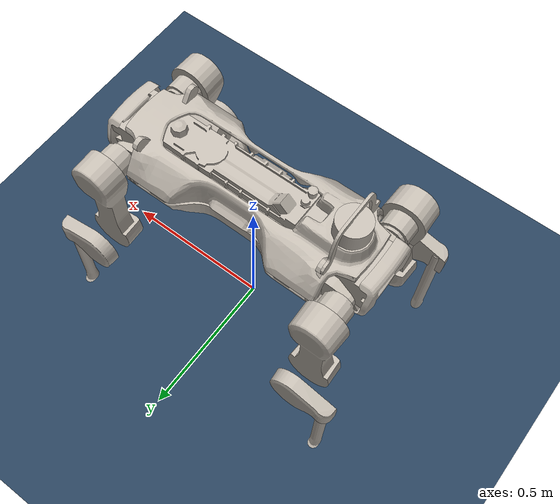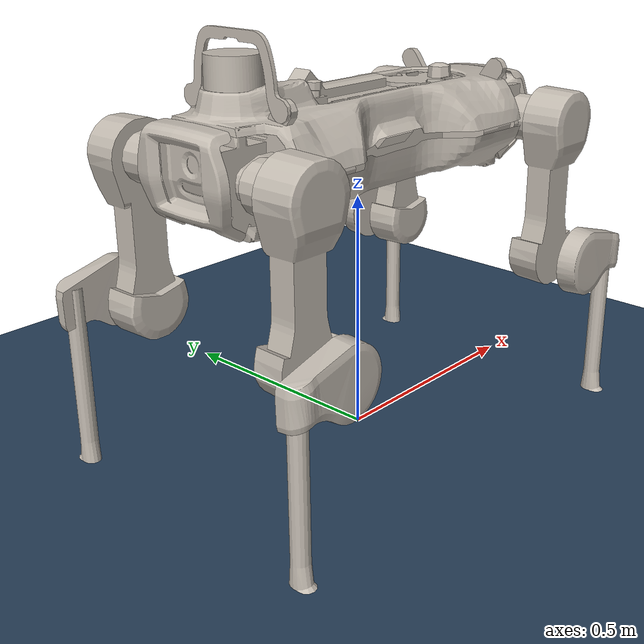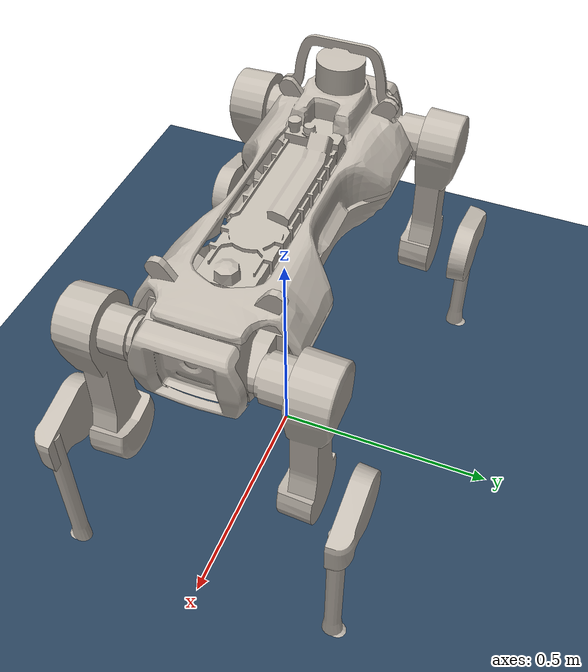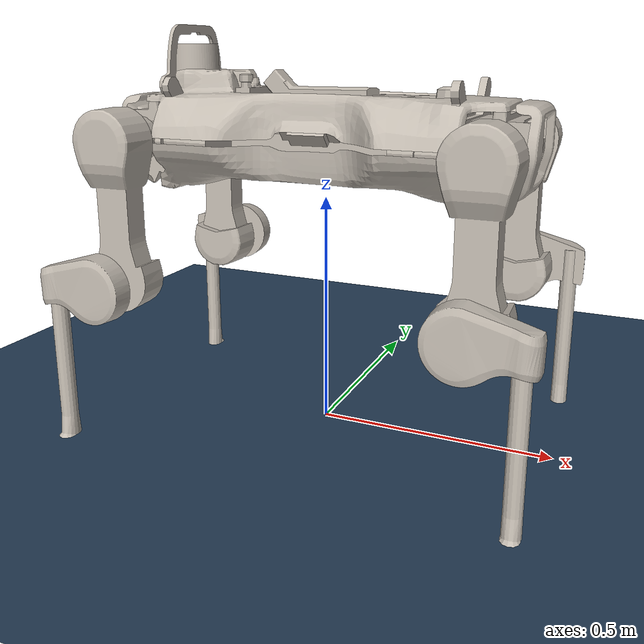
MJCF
<mujoco model="anymal_d scene">
  <include file="anymal_d.xml"/>

  <statistic center="0 0 0.3" extent="1.2"/>

  <visual>
    <headlight diffuse="0.6 0.6 0.6" ambient="0.3 0.3 0.3" specular="0 0 0"/>
    <rgba haze="0.15 0.25 0.35 1"/>
    <global azimuth="120" elevation="-20" offwidth="1280" offheight="960"/>
  </visual>

  <asset>
    <texture type="skybox" builtin="gradient" rgb1="0.3 0.5 0.7" rgb2="0 0 0" width="512" height="3072"/>
    <texture type="2d" name="groundplane" builtin="checker" mark="edge" rgb1="0.2 0.3 0.4"
        rgb2="0.1 0.2 0.3" markrgb="0.8 0.8 0.8" width="300" height="300"/>
    <material name="groundplane" texture="groundplane" texuniform="true" texrepeat="5 5" reflectance="0.2"/>
  </asset>

  <worldbody>
    <light pos="0 0 1.5" dir="0 0 -1" directional="true"/>
    <geom name="floor" size="0 0 0.05" type="plane" material="groundplane"/>
  </worldbody>
</mujoco>

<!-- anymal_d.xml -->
<mujoco model="anymal_d">
  <compiler angle="radian" meshdir="assets" texturedir="assets" autolimits="true"/>

  <option cone="elliptic" impratio="100"/>

  <default>
    <material specular="0" shininess="0.25"/>
    <default class="anymal_d">
      <joint damping="1" frictionloss="0.1" armature="0.1"/>

      <default class="visual">
        <geom type="mesh" contype="0" conaffinity="0" group="2"/>
      </default>
      <default class="collision">
        <geom group="3" type="cylinder"/>
        <default class="foot">
          <geom type="sphere" size="0.031" priority="1" solimp="0.015 1 0.031"
              condim="6" friction="0.8 0.02 0.01"/>
        </default>
      </default>

      <default class="affine">
        <position kp="100" ctrlrange="-6.28 6.28" forcerange="-80 80"/>
      </default>
    </default>
  </default>

  <asset>
    <material name="base"          texture="base"/>
    <material name="top_shell"     texture="top_shell"/>
    <material name="bottom_shell"  texture="bottom_shell"/>
    <material name="face_shell"    texture="face_shell"/>
    <material name="battery"       texture="battery"/>
    <material name="docking_socket" texture="docking_socket"/>
    <material name="lidar"         texture="lidar"/>
    <material name="lidar_guard"   texture="lidar_guard"/>
    <material name="drive"         texture="drive"/>
    <material name="hip"           texture="hip"/>
    <material name="thigh"         texture="thigh"/>
    <material name="shank"         texture="shank"/>
    <material name="foot"          texture="foot"/>

    <texture type="2d" name="base"          file="base.png"/>
    <texture type="2d" name="top_shell"     file="top_shell.png"/>
    <texture type="2d" name="bottom_shell"  file="bottom_shell.png"/>
    <texture type="2d" name="face_shell"    file="face_shell.png"/>
    <texture type="2d" name="battery"       file="battery.png"/>
    <texture type="2d" name="docking_socket" file="docking_socket.png"/>
    <texture type="2d" name="lidar"         file="lidar.png"/>
    <texture type="2d" name="lidar_guard"   file="lidar_guard.png"/>
    <texture type="2d" name="drive"         file="drive.png"/>
    <texture type="2d" name="hip"           file="hip.png"/>
    <texture type="2d" name="thigh"         file="thigh.png"/>
    <texture type="2d" name="shank"         file="shank.png"/>
    <texture type="2d" name="foot"          file="foot.png"/>

    <mesh file="base.obj"/>
    <mesh file="top_shell.obj"/>
    <mesh file="bottom_shell.obj"/>
    <mesh file="face_shell.obj"/>
    <mesh file="battery.obj"/>
    <mesh file="docking_socket.obj"/>
    <mesh file="lidar.obj"/>
    <mesh file="lidar_guard.obj"/>
    <mesh file="drive.obj"/>
    <mesh file="hip.obj"/>
    <mesh file="thigh.obj"/>
    <mesh file="shank_l.obj"/>
    <mesh file="shank_r.obj"/>
    <mesh file="foot.obj"/>
  </asset>

  <worldbody>
    <light name="spotlight" mode="targetbodycom" target="base" pos="0 -1 2" cutoff="30"/>
    <body name="base" pos="0 0 0.62" childclass="anymal_d">
      <freejoint/>
      <inertial mass="8.27629" pos="-0.02148 0.00173 -0.04417"
          fullinertia="0.06185585085 0.46467853407 0.47162119244 0.00052357046 -0.02204886469 0.00058724812"/>
      <!-- base visual shells -->
      <geom mesh="base" material="base" class="visual"/>
      <geom mesh="top_shell" material="top_shell" class="visual"/>
      <geom mesh="bottom_shell" material="bottom_shell" class="visual"/>
      <geom mesh="battery" material="battery" class="visual"/>
      <geom pos="0.4087 0 0.0205" material="face_shell" mesh="face_shell" class="visual"/>
      <geom pos="-0.4087 0 0.0205" quat="0 0 0 1" material="face_shell" mesh="face_shell" class="visual"/>
      <geom pos="0.26132 0 -0.06205" material="docking_socket" mesh="docking_socket" class="visual"/>
      <geom pos="-0.31 0 0.1585" quat="0 0 0 1" material="lidar" mesh="lidar" class="visual"/>
      <geom pos="-0.31 0 0.1585" quat="0 0 0 1" material="lidar_guard" mesh="lidar_guard" class="visual"/>
      <geom pos="0.304 0.109 0" material="drive" mesh="drive" class="visual"/>
      <geom pos="0.304 -0.109 0" material="drive" mesh="drive" class="visual"/>
      <geom pos="-0.304 0.109 0" quat="0 0 0 -1" material="drive" mesh="drive" class="visual"/>
      <geom pos="-0.304 -0.109 0" quat="0 0 0 -1" material="drive" mesh="drive" class="visual"/>
      <!-- base collision -->
      <geom class="collision" size="0.447 0.08075 0.128" pos="0 0 0.016" type="box"/>
      <geom class="collision" size="0.089 0.0741" pos="0.2353 0.08075 0" quat="1 0 1 0"/>
      <geom class="collision" size="0.089 0.0741" pos="0.2353 -0.08075 0" quat="1 0 1 0"/>
      <geom class="collision" size="0.089 0.0741" pos="-0.2353 0.08075 0" quat="1 0 1 0"/>
      <geom class="collision" size="0.089 0.0741" pos="-0.2353 -0.08075 0" quat="1 0 1 0"/>
      <geom class="collision" size="0.07 0.06775" pos="-0.31 0 0.1585"/>

      <body name="LF_HIP" pos="0.304 0.109 0">
        <inertial pos="0.035047 -0.00122677 0" quat="0.502484 0.502593 0.497424 0.497473" mass="0.36586" diaginertia="0.000558279 0.000443321 0.00023849"/>
        <joint name="LF_HAA" axis="1 0 0" range="-0.785398 0.610865"/>
        <geom material="hip" mesh="hip" class="visual"/>
        <body name="LF_THIGH" pos="0.069 0.006 0" quat="0.707107 0 0 -0.707107">
          <inertial pos="-0.0669974 0.110833 -0.121809" quat="0.847424 0.355343 -0.0696405 0.388271" mass="5.1322" diaginertia="0.141486 0.135483 0.0206892"/>
          <joint name="LF_HFE" axis="-1 0 0" range="-9.42478 9.42478"/>
          <geom material="drive" mesh="drive" class="visual"/>
          <geom quat="0.707107 0 0 0.707107" material="thigh" mesh="thigh" class="visual"/>
          <geom class="collision" size="0.05375 0.0595" pos="-0.0595 0 0" quat="1 0 1 0"/>
          <geom class="collision" size="0.07 0.041565" pos="-0.105195 0 0" quat="0.5 0.5 0.5 0.5"/>
          <geom class="collision" size="0.0465 0.0315 0.1425" pos="-0.09513 0 -0.1425" quat="0.707107 0 0 0.707107" type="box"/>
          <geom class="collision" size="0.07 0.041565" pos="-0.085065 0 -0.285" quat="0.5 0.5 0.5 0.5"/>
          <body name="LF_SHANK" pos="-0.1805 0 -0.285" quat="0 0 0 1">
            <inertial pos="0.0219778 -0.032671 -0.0911529" quat="0.80705 -0.129258 0.0892927 0.569201" mass="0.79598" diaginertia="0.0192772 0.0192542 0.00249606"/>
            <joint name="LF_KFE" axis="1 0 0" range="-9.42478 9.42478"/>
            <geom quat="0.707107 0 0 -0.707107" material="shank" mesh="shank_l" class="visual"/>
            <geom pos="0.02225 -0.1 -0.39246" quat="0.707107 0 0 -0.707107" material="foot" mesh="foot" class="visual"/>
            <geom class="collision" size="0.071 0.02866" quat="0.5 0.5 -0.5 -0.5"/>
            <geom class="collision" size="0.066415 0.04151 0.02866" pos="0 -0.066415 0" quat="0.5 0.5 -0.5 -0.5" type="box"/>
            <geom class="collision" size="0.0175 0.19786" pos="0.00535885 -0.1 -0.164217" quat="0.707107 0 0 -0.707107"/>
            <geom class="foot" pos="0.0141088 -0.1 -0.362077"/>
          </body>
        </body>
      </body>

      <body name="RF_HIP" pos="0.304 -0.109 0">
        <inertial pos="0.035047 0.00122677 0" quat="0.497473 0.497424 0.502593 0.502484" mass="0.36586" diaginertia="0.000558279 0.000443321 0.00023849"/>
        <joint name="RF_HAA" axis="1 0 0" range="-0.610865 0.785398"/>
        <geom quat="0 -1 0 0" material="hip" mesh="hip" class="visual"/>
        <body name="RF_THIGH" pos="0.069 -0.006 0" quat="0.707107 0 0 0.707107">
          <inertial pos="-0.0669974 0.0715537 -0.121809" quat="0.877206 0.44579 0.0354025 0.17472" mass="5.1322" diaginertia="0.18131 0.150268 0.0396147"/>
          <joint name="RF_HFE" axis="1 0 0" range="-9.42478 9.42478"/>
          <geom material="drive" mesh="drive" class="visual"/>
          <geom quat="-0.707107 0 0 -0.707107" material="thigh" mesh="thigh" class="visual"/>
          <geom class="collision" size="0.05375 0.0595" pos="-0.0595 0 0" quat="1 0 1 0"/>
          <geom class="collision" size="0.07 0.041565" pos="-0.105195 0 0" quat="0.5 0.5 -0.5 -0.5"/>
          <geom class="collision" size="0.0465 0.0315 0.1425" pos="-0.09513 0 -0.1425" quat="0.707107 0 0 -0.707107" type="box"/>
          <geom class="collision" size="0.07 0.041565" pos="-0.085065 0 -0.285" quat="0.5 0.5 -0.5 -0.5"/>
          <body name="RF_SHANK" pos="-0.1805 0 -0.285" quat="0 0 0 -1">
            <inertial pos="0.0219778 0.032671 -0.0911529" quat="0.569201 0.0892927 -0.129258 0.80705" mass="0.79598" diaginertia="0.0192772 0.0192542 0.00249606"/>
            <joint name="RF_KFE" axis="-1 0 0" range="-9.42478 9.42478"/>
            <geom quat="0.707107 0 0 0.707107" material="shank" mesh="shank_r" class="visual"/>
            <geom pos="0.02225 0.1 -0.39246" quat="0.707107 0 0 -0.707107" material="foot" mesh="foot" class="visual"/>
            <geom class="collision" size="0.071 0.02866" quat="0.5 0.5 0.5 0.5"/>
            <geom class="collision" size="0.066415 0.04151 0.02866" pos="0 0.066415 0" quat="0.5 0.5 0.5 0.5" type="box"/>
            <geom class="collision" size="0.0175 0.19786" pos="0.00535885 0.1 -0.164217" quat="0.707107 0 0 0.707107"/>
            <geom class="foot" pos="0.0141088 0.1 -0.362077"/>
          </body>
        </body>
      </body>

      <body name="LH_HIP" pos="-0.304 0.109 0" quat="0 0 0 -1">
        <inertial pos="-0.0346698 -0.00125957 0" quat="0.497686 0.497737 0.502224 0.502332" mass="0.36586" diaginertia="0.000567894 0.000452912 0.000238466"/>
        <joint name="LH_HAA" axis="-1 0 0" range="-0.785398 0.610865"/>
        <geom quat="0 1 0 0" material="hip" mesh="hip" class="visual"/>
        <body name="LH_THIGH" pos="0.069 -0.006 0" quat="-0.707107 0 0 -0.707107">
          <inertial pos="-0.0668215 0.110833 -0.121809" quat="0.848941 0.356939 -0.0647204 0.384323" mass="5.1322" diaginertia="0.141716 0.135634 0.0205503"/>
          <joint name="LH_HFE" axis="-1 0 0" range="-9.42478 9.42478"/>
          <geom material="drive" mesh="drive" class="visual"/>
          <geom quat="0.707107 0 0 0.707107" material="thigh" mesh="thigh" class="visual"/>
          <geom class="collision" size="0.05375 0.0595" pos="-0.0595 0 0" quat="1 0 1 0"/>
          <geom class="collision" size="0.07 0.041565" pos="-0.105195 0 0" quat="0.5 0.5 0.5 0.5"/>
          <geom class="collision" size="0.0465 0.0315 0.1425" pos="-0.09513 0 -0.1425" quat="0.707107 0 0 0.707107" type="box"/>
          <geom class="collision" size="0.07 0.041565" pos="-0.085065 0 -0.285" quat="0.5 0.5 0.5 0.5"/>
          <body name="LH_SHANK" pos="-0.1805 0 -0.285" quat="0 0 0 1">
            <inertial pos="-0.00540503 0.0417739 -0.0887313" quat="0.576666 0.0236612 -0.146695 0.803354" mass="0.79598" diaginertia="0.0186219 0.0179968 0.00220746"/>
            <joint name="LH_KFE" axis="1 0 0" range="-9.42478 9.42478"/>
            <geom quat="-0.707107 0 0 -0.707107" material="shank" mesh="shank_r" class="visual"/>
            <geom pos="0.02225 0.1 -0.39246" quat="0.707107 0 0 -0.707107" material="foot" mesh="foot" class="visual"/>
            <geom class="collision" size="0.071 0.02866" quat="0.5 0.5 -0.5 -0.5"/>
            <geom class="collision" size="0.066415 0.04151 0.02866" pos="0 0.066415 0" quat="0.5 0.5 -0.5 -0.5" type="box"/>
            <geom class="collision" size="0.0175 0.19786" pos="0.00535885 0.1 -0.164217" quat="0.707107 0 0 -0.707107"/>
            <geom class="foot" pos="0.0141088 0.1 -0.362077"/>
          </body>
        </body>
      </body>

      <body name="RH_HIP" pos="-0.304 -0.109 0" quat="0 0 0 -1">
        <inertial pos="-0.0346698 0.00125957 0" quat="0.502332 0.502224 0.497737 0.497686" mass="0.36586" diaginertia="0.000567894 0.000452912 0.000238466"/>
        <joint name="RH_HAA" axis="-1 0 0" range="-0.610865 0.785398"/>
        <geom quat="-1 0 0 0" material="hip" mesh="hip" class="visual"/>
        <body name="RH_THIGH" pos="0.069 0.006 0" quat="0.707107 0 0 -0.707107">
          <inertial pos="-0.0668215 0.0715537 -0.121809" quat="0.879005 0.444872 0.0396475 0.166936" mass="5.1322" diaginertia="0.180979 0.150741 0.0397139"/>
          <joint name="RH_HFE" axis="1 0 0" range="-9.42478 9.42478"/>
          <geom material="drive" mesh="drive" class="visual"/>
          <geom quat="-0.707107 0 0 -0.707107" material="thigh" mesh="thigh" class="visual"/>
          <geom class="collision" size="0.05375 0.0595" pos="-0.0595 0 0" quat="1 0 1 0"/>
          <geom class="collision" size="0.07 0.041565" pos="-0.105195 0 0" quat="0.5 0.5 -0.5 -0.5"/>
          <geom class="collision" size="0.0465 0.0315 0.1425" pos="-0.09513 0 -0.1425" quat="0.707107 0 0 -0.707107" type="box"/>
          <geom class="collision" size="0.07 0.041565" pos="-0.085065 0 -0.285" quat="0.5 0.5 -0.5 -0.5"/>
          <body name="RH_SHANK" pos="-0.1805 0 -0.285" quat="0 0 0 -1">
            <inertial pos="-0.00540503 -0.0417739 -0.0887313" quat="0.803354 -0.146695 0.0236612 0.576666" mass="0.79598" diaginertia="0.0186219 0.0179968 0.00220746"/>
            <joint name="RH_KFE" axis="-1 0 0" range="-9.42478 9.42478"/>
            <geom quat="0.707107 0 0 -0.707107" material="shank" mesh="shank_l" class="visual"/>
            <geom pos="0.02225 -0.1 -0.39246" quat="0.707107 0 0 -0.707107" material="foot" mesh="foot" class="visual"/>
            <geom class="collision" size="0.071 0.02866" quat="0.5 0.5 0.5 0.5"/>
            <geom class="collision" size="0.066415 0.04151 0.02866" pos="0 -0.066415 0" quat="0.5 0.5 0.5 0.5" type="box"/>
            <geom class="collision" size="0.0175 0.19786" pos="0.00535885 -0.1 -0.164217" quat="0.707107 0 0 0.707107"/>
            <geom class="foot" pos="0.0141088 -0.1 -0.362077"/>
          </body>
        </body>
      </body>
      <site name="imu" pos="0 0 0"/>
    </body>
  </worldbody>

  <contact>
    <exclude body1="base" body2="LF_THIGH"/>
    <exclude body1="base" body2="RF_THIGH"/>
    <exclude body1="base" body2="LH_THIGH"/>
    <exclude body1="base" body2="RH_THIGH"/>
  </contact>

  <actuator>
    <position class="affine" joint="LF_HAA" name="LF_HAA"/>
    <position class="affine" joint="LF_HFE" name="LF_HFE"/>
    <position class="affine" joint="LF_KFE" name="LF_KFE"/>
    <position class="affine" joint="RF_HAA" name="RF_HAA"/>
    <position class="affine" joint="RF_HFE" name="RF_HFE"/>
    <position class="affine" joint="RF_KFE" name="RF_KFE"/>
    <position class="affine" joint="LH_HAA" name="LH_HAA"/>
    <position class="affine" joint="LH_HFE" name="LH_HFE"/>
    <position class="affine" joint="LH_KFE" name="LH_KFE"/>
    <position class="affine" joint="RH_HAA" name="RH_HAA"/>
    <position class="affine" joint="RH_HFE" name="RH_HFE"/>
    <position class="affine" joint="RH_KFE" name="RH_KFE"/>
  </actuator>

  <keyframe>
    <key name="home"
        qpos="0 0 0.588 1 0 0 0
              0 0.4 -0.8
              0 0.4 -0.8
              0 -0.4 0.8
              0 -0.4 0.8"
        ctrl="0 0.4 -0.8 0 0.4 -0.8 0 -0.4 0.8 0 -0.4 0.8"/>
  </keyframe>

  <sensor>
    <framequat name="orientation" objtype="site" objname="imu"/>
    <gyro name="angular-velocity" site="imu"/>
    <accelerometer name="linear-acceleration" site="imu"/>
    <velocimeter name="linear-velocity" site="imu"/>
  </sensor>

</mujoco>
